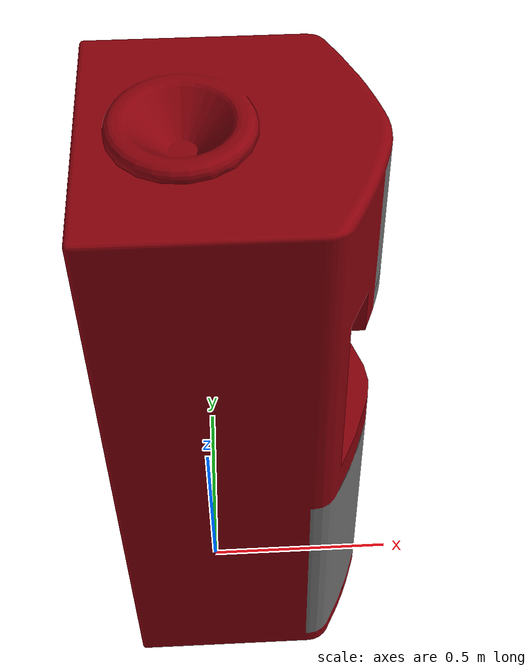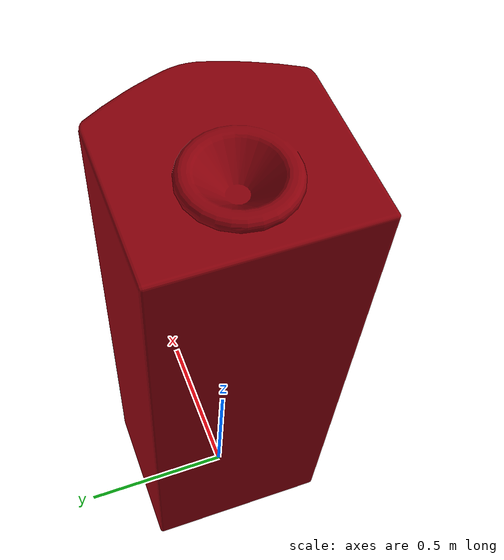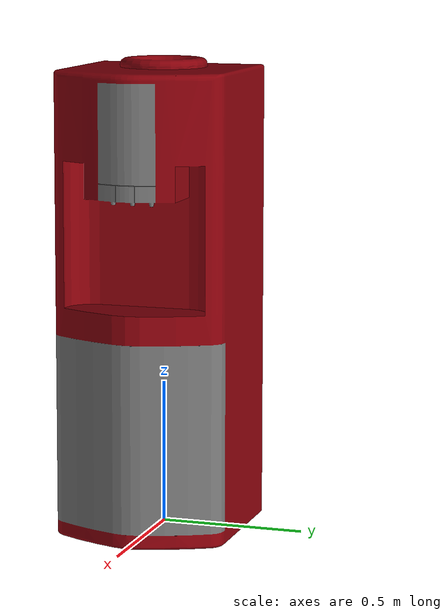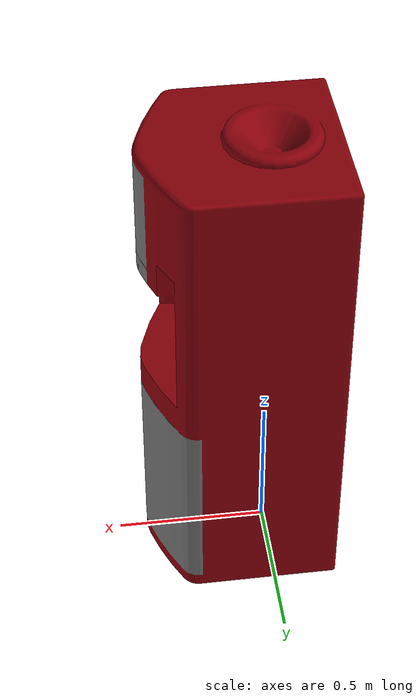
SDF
<?xml version='1.0' ?>
<sdf version='1.6'>
  <model name='water_dispenser'>
    <static>false</static>
    <link name='link'>
      <collision name='collision'>
        <geometry>
          <mesh>
            <scale>2.0 2.0 2.0</scale>
            <uri>model://volta_simulation/models/water_dispenser/meshes/water_dispenser.dae</uri>
          </mesh>
        </geometry>
        <surface>
          <friction>
            <ode>
              <mu>100</mu>
              <mu2>50</mu2>
            </ode>
          </friction>
        </surface>
      </collision>
      <visual name='visual'>
        <geometry>
          <mesh>
            <scale>2.0 2.0 2.0</scale>
            <uri>model://volta_simulation/models/water_dispenser/meshes/water_dispenser.dae</uri>
          </mesh>
        </geometry>
      </visual>
      <inertial>
        <pose>0.03126943 0 0.39401756 0 0 0</pose>
        <mass>22</mass>
        <inertia>
          <ixx>4.0 </ixx>
          <iyy>4.0 </iyy>
          <izz>0.32</izz>
          <ixy>0</ixy>
          <ixz>0.2 </ixz>
          <iyz>0</iyz>
        </inertia>
      </inertial>
    </link>
  </model>
</sdf>
